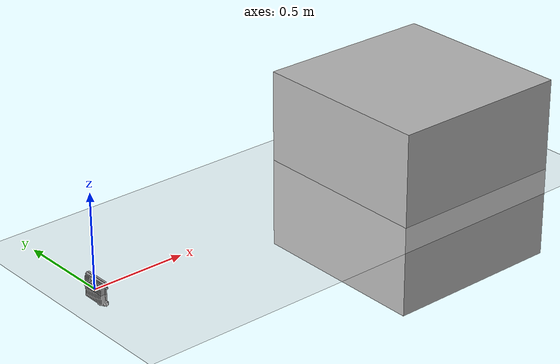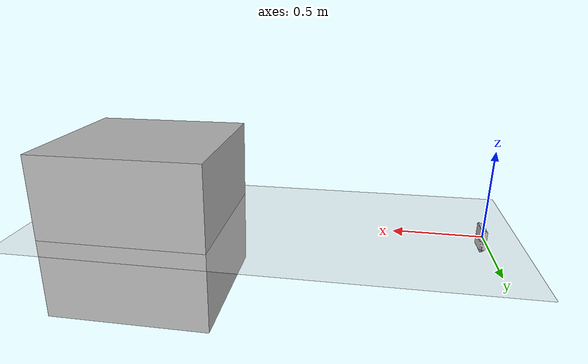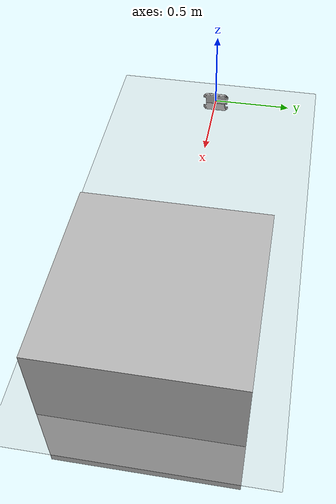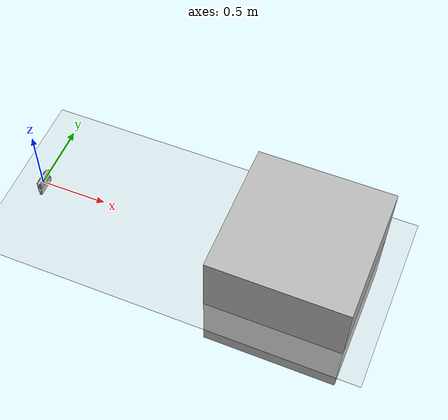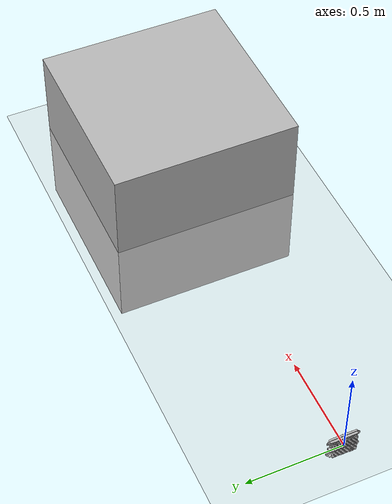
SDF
<?xml version="1.0" ?>
<sdf version="1.4">
  <world name="default">
    <include>
      <uri>model://ground_plane</uri>
    </include>

    <include>
      <uri>model://sun</uri>
    </include>

    <model name="box">
      <link name="link">
	<pose>2.0 0.0 0.0 0.0 0.0 0.0</pose>
        <collision name="box_collision">
	  <geometry>
	    <box>
	      <size>1 1 1</size>
	    </box>
	  </geometry>
	</collision>
        <visual name="visual">
	  <geometry>
	    <box>
	      <size>1 1 1</size>
	    </box>
	  </geometry>
	</visual>
      </link>
    </model>

    <include>
      <uri>model://radar_sensor</uri>
    </include>

  </world>
</sdf>

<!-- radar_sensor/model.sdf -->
<sdf version="1.4">
  <model name='radar_sensor'>
    <pose>0.0 0.0 0.0 0.0 0.0 0.0</pose>
    <link name='link'>
      <inertial>
	<mass>0.01</mass>
	<inertia>
	  <ixx>0.001</ixx>
	  <ixy>0</ixy>
	  <ixz>0</ixz>
	  <iyy>0.001</iyy>
	  <iyz>0</iyz>
	  <izz>0.001</izz>
	</inertia>
      </inertial>
      <collision name='collision'>
	<geometry>
	  <box>
	    <size>0.01 0.05 0.05</size>
	  </box>
	</geometry>
	<max_contacts>10</max_contacts>
	<surface>
	  <contact>
	    <ode/>
	  </contact>
	  <bounce/>
	  <friction>
	    <ode/>
	  </friction>
	</surface>
      </collision>
      <visual name='visual'>
	<geometry>
	  <mesh>
	    <uri>model://radar_sensor/meshes/kanza79.stl</uri>
	  </mesh>
	</geometry>
      </visual>
      <sensor type="ray" name="range">
	<update_rate>10</update_rate>
	<visualize>true</visualize>
	<ray>
	  <scan>
	    <horizontal>
	      <samples>10</samples>
	      <resolution>1</resolution>
	      <min_angle>-0.7</min_angle>
	      <max_angle>0.7</max_angle>
	    </horizontal>
	  </scan>
	  <range>
	    <min>0.1</min> <!-- do not change (smaller values cause issues) -->
	    <max>35</max>   <!-- do not change (bigger values cause issues) -->
	    <resolution>0.01</resolution>
	  </range>
	</ray>
	<plugin name="range" filename="libgazebo_radar_sensor_plugin.so">
	  <alwaysOn>true</alwaysOn>
	  <updateRate>10</updateRate>
	  <frameName>link</frameName>
	</plugin>
      </sensor>
      <self_collide>0</self_collide>
      <kinematic>0</kinematic>
      <gravity>1</gravity>
    </link>
  </model>
</sdf>
